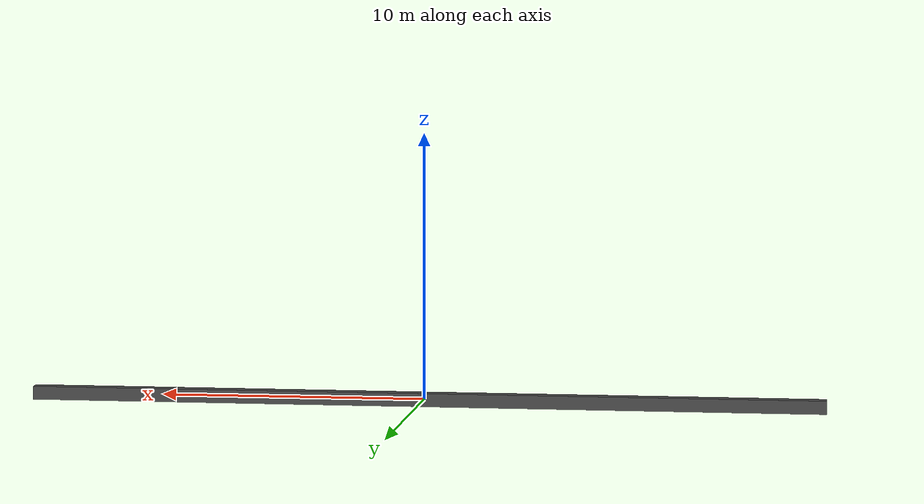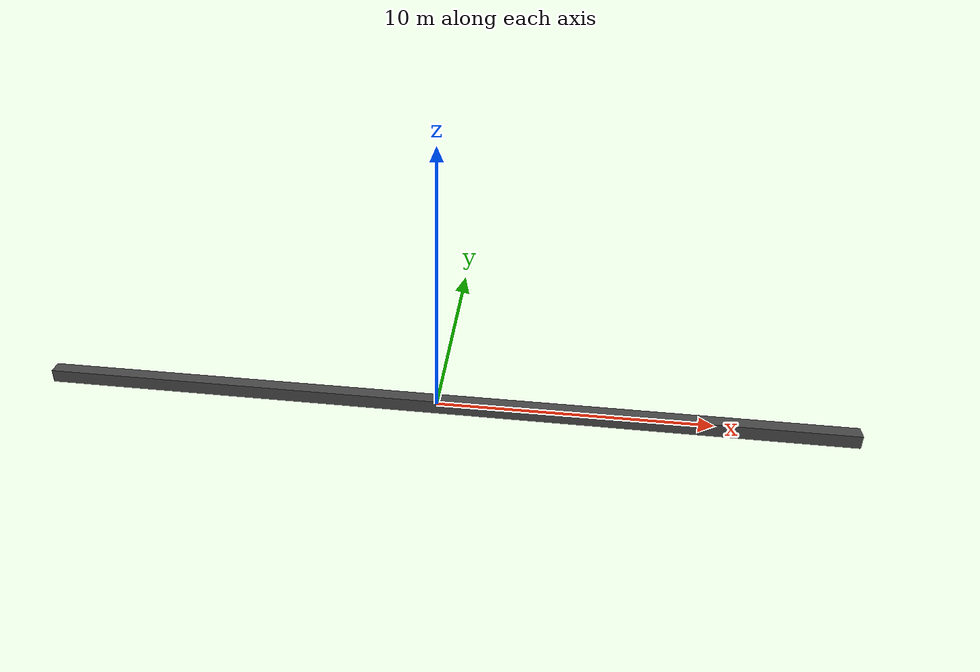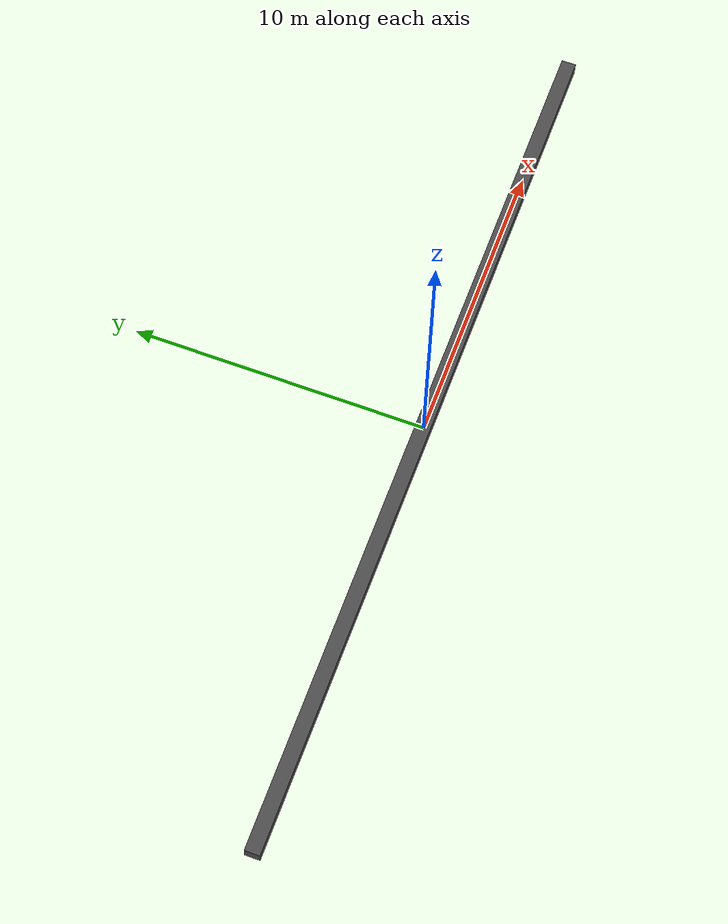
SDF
<?xml version="1.0" ?>
<sdf version="1.5">
  <model name="asphalt_box">
    <static>true</static>
    <link name="link">
      <collision name="collision">
        <geometry>
          <box>
            <size>30 0.5 0.5</size>
          </box>
        </geometry>
      </collision>
      <visual name="visual">
        <cast_shadows>false</cast_shadows>
        <geometry>
          <box>
            <size>30 0.5 0.5</size>
          </box>
        </geometry>
        <material>
          <script>
            <uri>model://asphalt_box/materials/scripts</uri>
            <uri>model://asphalt_box/materials/textures</uri>
            <name>vrc/asphalt</name>
          </script>
        </material>
      </visual>
    </link>
  </model>
</sdf>
